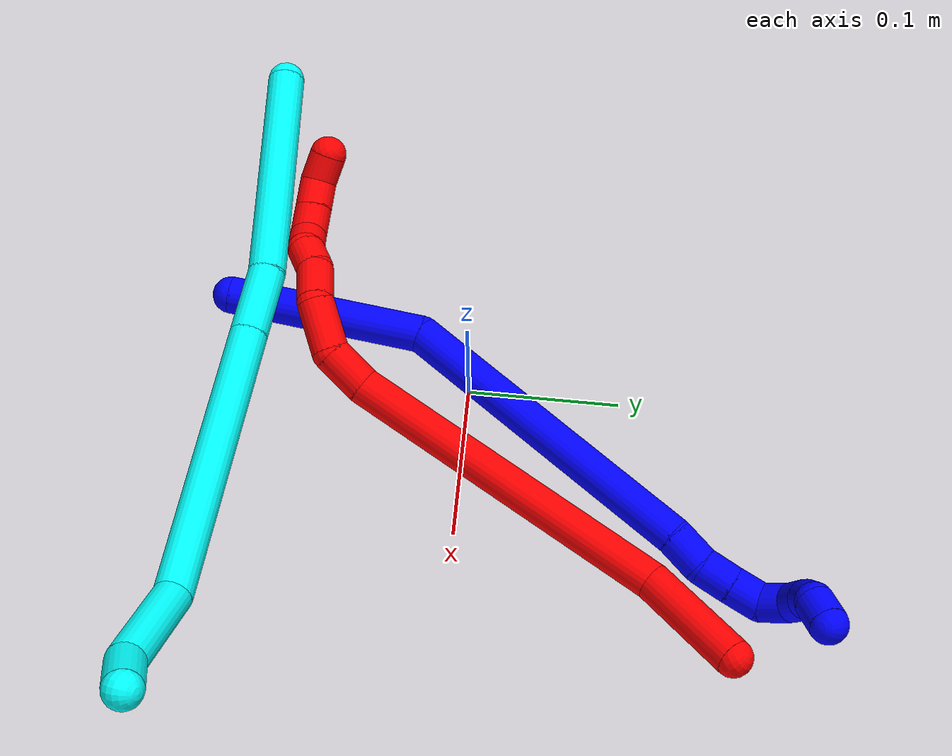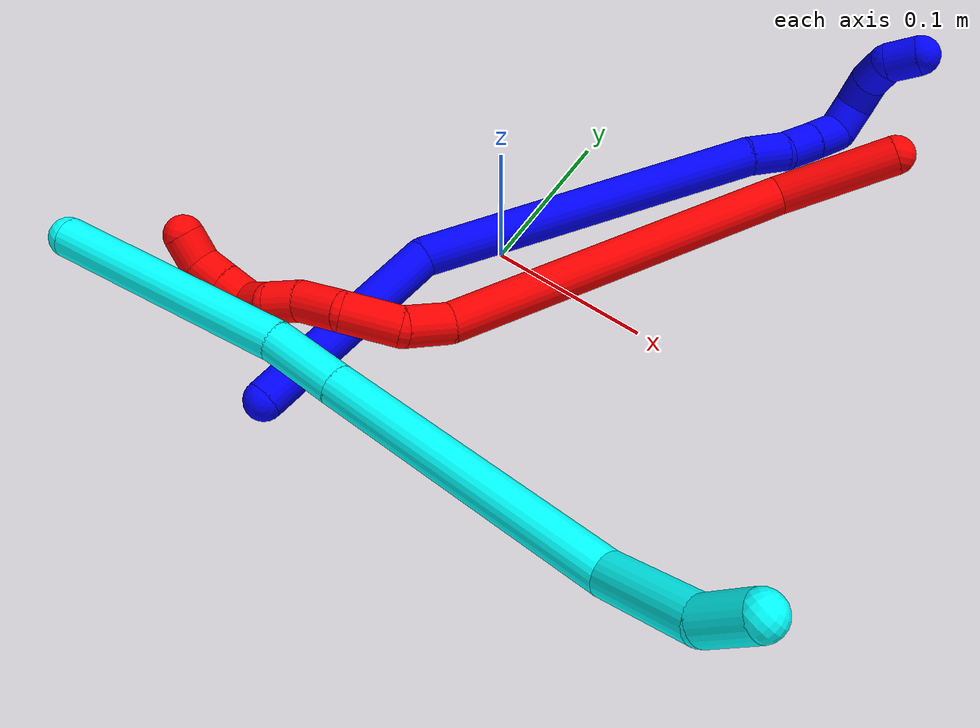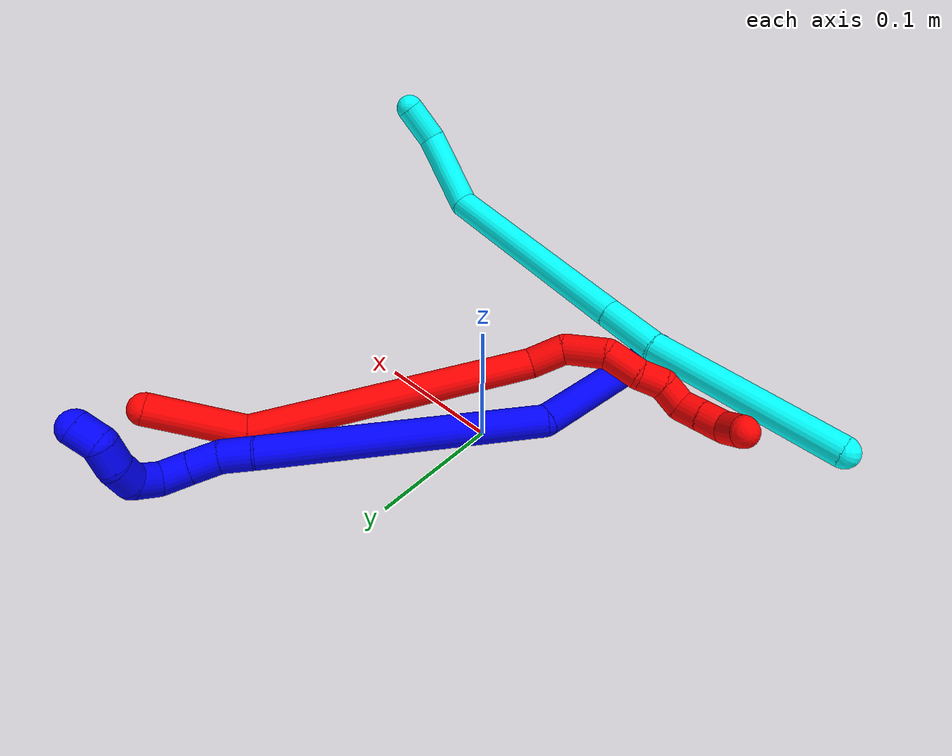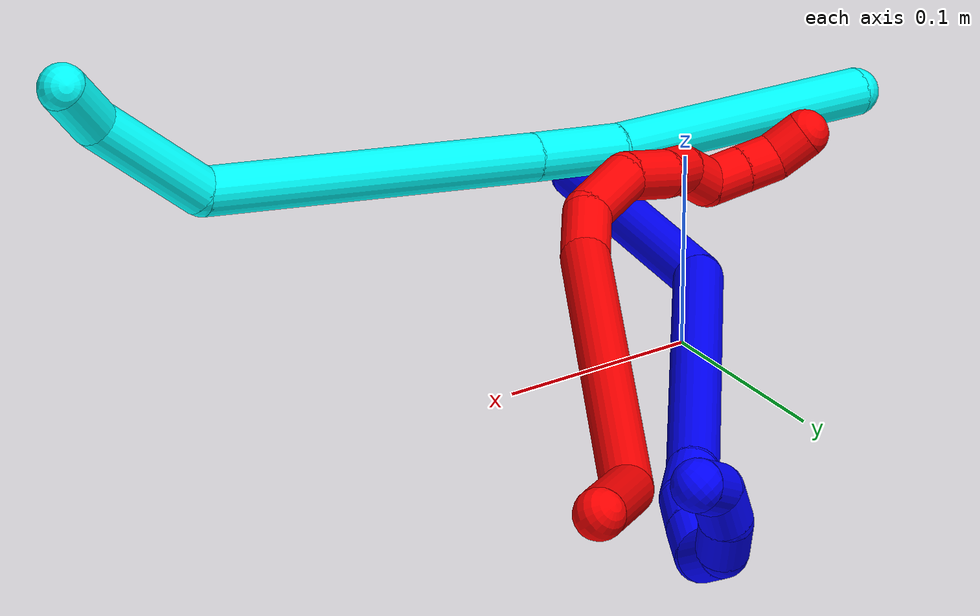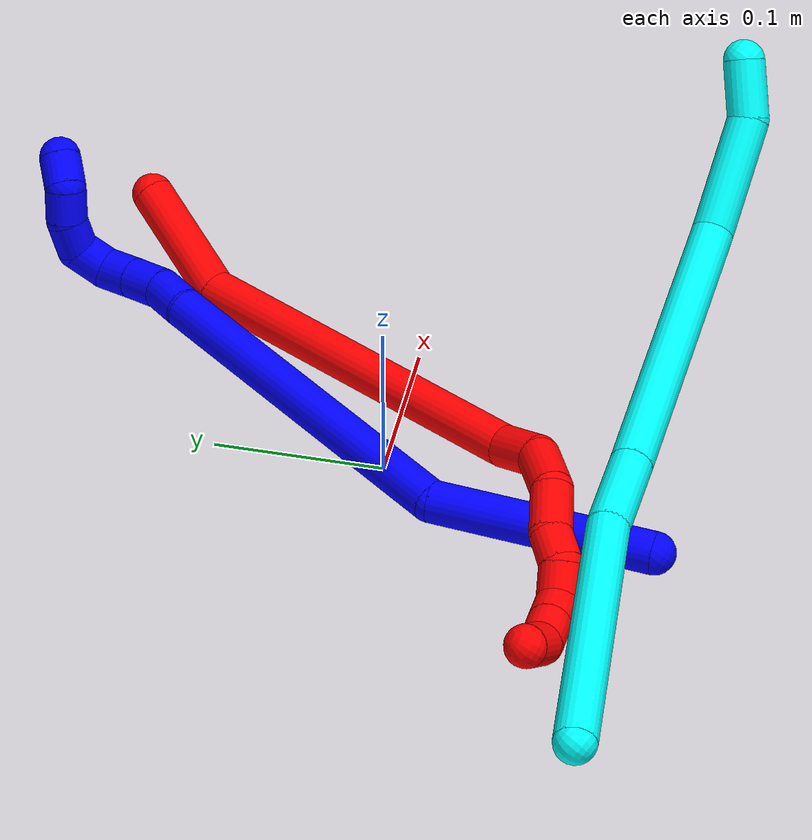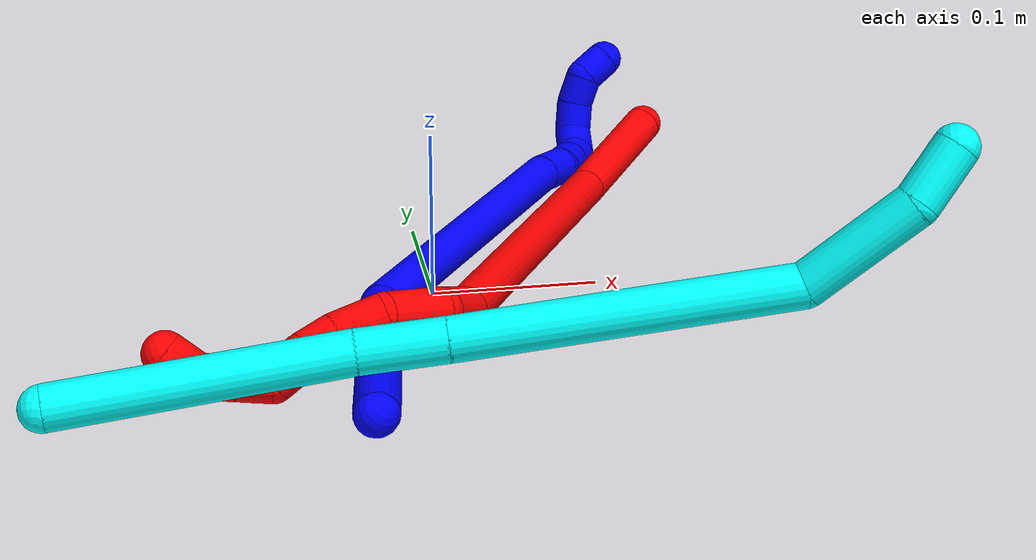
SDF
<sdf version="1.7">
 <world name="default">
  <plugin name="TubeGeneratorPlugin" filename="libtube_generator_plugin.so"/>
  <model name="photoneo_s_sensor">
   <static>1</static>
   <pose>0 0 2 1.57079 1.57079 3.14159</pose>
   <link name="link">
    <inertial><mass>0.1</mass></inertial>
    <sensor name="sensor" type="depth">
     <update_rate>30</update_rate>
     <camera>
      <horizontal_fov>1.22</horizontal_fov>
      <image><width>1920</width><height>1200</height><format>B8G8R8</format></image>
      <clip><near>0.1</near><far>4</far></clip>
      <depth_camera><output>points</output></depth_camera>
     </camera>
     <plugin name="camera_plugin" filename="libgazebo_ros_depth_camera.so">
      <baseline>0.2</baseline>
      <alwaysOn>1</alwaysOn>
      <updateRate>0.0</updateRate>
      <cameraName>camera_ir</cameraName>
      <imageTopicName>/camera/color/image_raw</imageTopicName>
      <cameraInfoTopicName>/camera/color/camera_info</cameraInfoTopicName>
      <depthImageTopicName>/camera/depth/image_raw</depthImageTopicName>
      <depthImageCameraInfoTopicName>/camera/depth/camera_info</depthImageCameraInfoTopicName>
      <pointCloudTopicName>/camera/depth/points</pointCloudTopicName>
      <frameName>fr_optical</frameName>
      <pointCloudCutoff>0.1</pointCloudCutoff>
      <pointCloudCutoffMax>2.0</pointCloudCutoffMax>
      <distortionK1>0</distortionK1>
      <distortionK2>0</distortionK2>
      <distortionK3>0</distortionK3>
      <distortionT1>0</distortionT1>
      <distortionT2>0</distortionT2>
      <CxPrime>0</CxPrime>
      <Cx>0</Cx>
      <Cy>0</Cy>
      <focalLength>0</focalLength>
      <hackBaseline>0</hackBaseline>
     </plugin>
    </sensor>
   </link>
  </model>
  <gravity>0 0 -9.8</gravity>
  <magnetic_field>6e-06 2.3e-05 -4.2e-05</magnetic_field>
  <atmosphere type="adiabatic"/>
  <physics name="default_physics" default="0" type="ode">
   <max_step_size>0.003</max_step_size>
   <real_time_factor>1</real_time_factor>
   <real_time_update_rate>1000</real_time_update_rate>
   <max_contacts>10000</max_contacts>
   <ode>
    <solver>
     <type>quick</type>
     <iters>100</iters>
     <sor>1.3</sor>
     <use_dynamic_moi_rescaling>0</use_dynamic_moi_rescaling>
    </solver>
    <constraints>
     <contact_max_correcting_vel>0</contact_max_correcting_vel>
     <contact_surface_layer>0.001</contact_surface_layer>
     <cfm>0</cfm>
     <erp>0.2</erp>
    </constraints>
   </ode>
  </physics>
  <scene><ambient>0.4 0.4 0.4 1</ambient><background>0.7 0.7 0.7 1</background><shadows>0</shadows></scene>
  <audio><device>default</device></audio>
  <spherical_coordinates>
   <surface_model>EARTH_WGS84</surface_model>
   <latitude_deg>0</latitude_deg>
   <longitude_deg>0</longitude_deg>
   <elevation>0</elevation>
   <heading_deg>0</heading_deg>
  </spherical_coordinates>
  <model name="bin">
   <static>1</static>
   <link name="bottom">
    <collision name="collision-bottom">
     <pose>0 0 -0.01 0 -0 0</pose>
     <geometry><box><size>0.8 0.6 0.02</size></box></geometry>
     <surface>
      <friction><ode><mu>100</mu><mu2>100</mu2></ode></friction>
      <contact><collide_bitmask>65535</collide_bitmask></contact>
     </surface>
    </collision>
   </link>
   <link name="west_wall">
    <collision name="collision-west_wall">
     <pose>-0.41 0 0.1 0 -0 0</pose>
     <geometry><box><size>0.02 0.6 0.2</size></box></geometry>
     <surface>
      <friction><ode><mu>100</mu><mu2>100</mu2></ode></friction>
      <contact><collide_bitmask>65535</collide_bitmask></contact>
     </surface>
    </collision>
   </link>
   <link name="east_wall">
    <collision name="collision-east_wall">
     <pose>0.41 0 0.1 0 -0 0</pose>
     <geometry><box><size>0.02 0.6 0.2</size></box></geometry>
     <surface>
      <friction><ode><mu>100</mu><mu2>100</mu2></ode></friction>
      <contact><collide_bitmask>65535</collide_bitmask></contact>
     </surface>
    </collision>
   </link>
   <link name="south_wall">
    <collision name="collision-south_wall">
     <pose>0 -0.31 0.1 0 -0 0</pose>
     <geometry><box><size>0.8 0.02 0.2</size></box></geometry>
     <surface>
      <friction><ode><mu>100</mu><mu2>100</mu2></ode></friction>
      <contact><collide_bitmask>65535</collide_bitmask></contact>
     </surface>
    </collision>
   </link>
   <link name="north_wall">
    <collision name="collision-north_wall">
     <pose>0 0.31 0.1 0 -0 0</pose>
     <geometry><box><size>0.8 0.02 0.2</size></box></geometry>
     <surface>
      <friction><ode><mu>100</mu><mu2>100</mu2></ode></friction>
      <contact><collide_bitmask>65535</collide_bitmask></contact>
     </surface>
    </collision>
   </link>
  </model>
  <model name="1">
   <static>0</static>
   <link name="1">
    <collision name="collision-cylinder-e_1_1_4">
     <pose>0.012954 0.056591 -0.032014 -2.08562 0.196658 -0.335116</pose>
     <geometry><cylinder><radius>0.0125</radius><length>0.132593</length></cylinder></geometry>
     <surface>
      <friction><ode><mu>1.16</mu><mu2>1.16</mu2><slip1>0</slip1><slip2>0</slip2></ode></friction>
      <contact><ode><kp>1e+06</kp><kd>1</kd><max_vel>0</max_vel><min_depth>0.001</min_depth></ode></contact>
     </surface>
    </collision>
    <visual name="visual-cylinder-e_1_1_4">
     <pose>0.012954 0.056591 -0.032014 -2.08562 0.196658 -0.335116</pose>
     <geometry><cylinder><radius>0.0125</radius><length>0.132593</length></cylinder></geometry>
     <material><ambient>0 0 1 1</ambient></material>
    </visual>
    <collision name="collision-cylinder-e_2_4_5">
     <pose>0.087643 0.201071 -0.08064 -1.7576 0.604116 -0.7193</pose>
     <geometry><cylinder><radius>0.0125</radius><length>0.217365</length></cylinder></geometry>
     <surface>
      <friction><ode><mu>1.16</mu><mu2>1.16</mu2><slip1>0</slip1><slip2>0</slip2></ode></friction>
      <contact><ode><kp>1e+06</kp><kd>1</kd><max_vel>0</max_vel><min_depth>0.001</min_depth></ode></contact>
     </surface>
    </collision>
    <visual name="visual-cylinder-e_2_4_5">
     <pose>0.087643 0.201071 -0.08064 -1.7576 0.604116 -0.7193</pose>
     <geometry><cylinder><radius>0.0125</radius><length>0.217365</length></cylinder></geometry>
     <material><ambient>0 0 1 1</ambient></material>
    </visual>
    <collision name="collision-cylinder-e_3_5_6">
     <pose>0.157984 0.297689 -0.099141 -1.784 0.766948 -0.927512</pose>
     <geometry><cylinder><radius>0.0125</radius><length>0.024802</length></cylinder></geometry>
     <surface>
      <friction><ode><mu>1.16</mu><mu2>1.16</mu2><slip1>0</slip1><slip2>0</slip2></ode></friction>
      <contact><ode><kp>1e+06</kp><kd>1</kd><max_vel>0</max_vel><min_depth>0.001</min_depth></ode></contact>
     </surface>
    </collision>
    <visual name="visual-cylinder-e_3_5_6">
     <pose>0.157984 0.297689 -0.099141 -1.784 0.766948 -0.927512</pose>
     <geometry><cylinder><radius>0.0125</radius><length>0.024802</length></cylinder></geometry>
     <material><ambient>0 0 1 1</ambient></material>
    </visual>
    <collision name="collision-cylinder-e_4_6_7">
     <pose>0.17249 0.314759 -0.105297 -2.04354 0.561935 -0.881589</pose>
     <geometry><cylinder><radius>0.0125</radius><length>0.022148</length></cylinder></geometry>
     <surface>
      <friction><ode><mu>1.16</mu><mu2>1.16</mu2><slip1>0</slip1><slip2>0</slip2></ode></friction>
      <contact><ode><kp>1e+06</kp><kd>1</kd><max_vel>0</max_vel><min_depth>0.001</min_depth></ode></contact>
     </surface>
    </collision>
    <visual name="visual-cylinder-e_4_6_7">
     <pose>0.17249 0.314759 -0.105297 -2.04354 0.561935 -0.881589</pose>
     <geometry><cylinder><radius>0.0125</radius><length>0.022148</length></cylinder></geometry>
     <material><ambient>0 0 1 1</ambient></material>
    </visual>
    <collision name="collision-cylinder-e_5_7_8">
     <pose>0.183957 0.331522 -0.113969 -2.05276 0.529889 -0.842601</pose>
     <geometry><cylinder><radius>0.0125</radius><length>0.022024</length></cylinder></geometry>
     <surface>
      <friction><ode><mu>1.16</mu><mu2>1.16</mu2><slip1>0</slip1><slip2>0</slip2></ode></friction>
      <contact><ode><kp>1e+06</kp><kd>1</kd><max_vel>0</max_vel><min_depth>0.001</min_depth></ode></contact>
     </surface>
    </collision>
    <visual name="visual-cylinder-e_5_7_8">
     <pose>0.183957 0.331522 -0.113969 -2.05276 0.529889 -0.842601</pose>
     <geometry><cylinder><radius>0.0125</radius><length>0.022024</length></cylinder></geometry>
     <material><ambient>0 0 1 1</ambient></material>
    </visual>
    <collision name="collision-cylinder-e_6_8_9">
     <pose>0.188265 0.350147 -0.118958 -1.62808 -0.122391 0.129591</pose>
     <geometry><cylinder><radius>0.0125</radius><length>0.020599</length></cylinder></geometry>
     <surface>
      <friction><ode><mu>1.16</mu><mu2>1.16</mu2><slip1>0</slip1><slip2>0</slip2></ode></friction>
      <contact><ode><kp>1e+06</kp><kd>1</kd><max_vel>0</max_vel><min_depth>0.001</min_depth></ode></contact>
     </surface>
    </collision>
    <visual name="visual-cylinder-e_6_8_9">
     <pose>0.188265 0.350147 -0.118958 -1.62808 -0.122391 0.129591</pose>
     <geometry><cylinder><radius>0.0125</radius><length>0.020599</length></cylinder></geometry>
     <material><ambient>0 0 1 1</ambient></material>
    </visual>
    <collision name="collision-cylinder-e_7_9_10">
     <pose>0.183887 0.368231 -0.113898 -0.949012 -0.311574 0.160998</pose>
     <geometry><cylinder><radius>0.0125</radius><length>0.020365</length></cylinder></geometry>
     <surface>
      <friction><ode><mu>1.16</mu><mu2>1.16</mu2><slip1>0</slip1><slip2>0</slip2></ode></friction>
      <contact><ode><kp>1e+06</kp><kd>1</kd><max_vel>0</max_vel><min_depth>0.001</min_depth></ode></contact>
     </surface>
    </collision>
    <visual name="visual-cylinder-e_7_9_10">
     <pose>0.183887 0.368231 -0.113898 -0.949012 -0.311574 0.160998</pose>
     <geometry><cylinder><radius>0.0125</radius><length>0.020365</length></cylinder></geometry>
     <material><ambient>0 0 1 1</ambient></material>
    </visual>
    <collision name="collision-cylinder-e_8_10_11">
     <pose>0.179385 0.382319 -0.100521 -0.67667 -0.138262 0.048717</pose>
     <geometry><cylinder><radius>0.0125</radius><length>0.020023</length></cylinder></geometry>
     <surface>
      <friction><ode><mu>1.16</mu><mu2>1.16</mu2><slip1>0</slip1><slip2>0</slip2></ode></friction>
      <contact><ode><kp>1e+06</kp><kd>1</kd><max_vel>0</max_vel><min_depth>0.001</min_depth></ode></contact>
     </surface>
    </collision>
    <visual name="visual-cylinder-e_8_10_11">
     <pose>0.179385 0.382319 -0.100521 -0.67667 -0.138262 0.048717</pose>
     <geometry><cylinder><radius>0.0125</radius><length>0.020023</length></cylinder></geometry>
     <material><ambient>0 0 1 1</ambient></material>
    </visual>
    <collision name="collision-cylinder-e_9_11_2">
     <pose>0.18283 0.395659 -0.087624 -0.943887 0.501285 -0.259886</pose>
     <geometry><cylinder><radius>0.0125</radius><length>0.020081</length></cylinder></geometry>
     <surface>
      <friction><ode><mu>1.16</mu><mu2>1.16</mu2><slip1>0</slip1><slip2>0</slip2></ode></friction>
      <contact><ode><kp>1e+06</kp><kd>1</kd><max_vel>0</max_vel><min_depth>0.001</min_depth></ode></contact>
     </surface>
    </collision>
    <visual name="visual-cylinder-e_9_11_2">
     <pose>0.18283 0.395659 -0.087624 -0.943887 0.501285 -0.259886</pose>
     <geometry><cylinder><radius>0.0125</radius><length>0.020081</length></cylinder></geometry>
     <material><ambient>0 0 1 1</ambient></material>
    </visual>
    <collision name="collision-sphere-2">
     <pose>0.187655 0.40279 -0.082459 0 -0 0</pose>
     <geometry><sphere><radius>0.0125</radius></sphere></geometry>
     <surface>
      <friction><ode><mu>1.16</mu><mu2>1.16</mu2><slip1>0</slip1><slip2>0</slip2></ode></friction>
      <contact><ode><kp>1e+06</kp><kd>1</kd><max_vel>0</max_vel><min_depth>0.001</min_depth></ode></contact>
     </surface>
    </collision>
    <visual name="visual-sphere-2">
     <pose>0.187655 0.40279 -0.082459 0 -0 0</pose>
     <geometry><sphere><radius>0.0125</radius></sphere></geometry>
     <material><ambient>0 0 1 1</ambient></material>
    </visual>
    <collision name="collision-sphere-11">
     <pose>0.178005 0.388528 -0.09279 0 -0 0</pose>
     <geometry><sphere><radius>0.0125</radius></sphere></geometry>
     <surface>
      <friction><ode><mu>1.16</mu><mu2>1.16</mu2><slip1>0</slip1><slip2>0</slip2></ode></friction>
      <contact><ode><kp>1e+06</kp><kd>1</kd><max_vel>0</max_vel><min_depth>0.001</min_depth></ode></contact>
     </surface>
    </collision>
    <visual name="visual-sphere-11">
     <pose>0.178005 0.388528 -0.09279 0 -0 0</pose>
     <geometry><sphere><radius>0.0125</radius></sphere></geometry>
     <material><ambient>0 0 1 1</ambient></material>
    </visual>
    <collision name="collision-sphere-10">
     <pose>0.180765 0.376109 -0.108252 0 -0 0</pose>
     <geometry><sphere><radius>0.0125</radius></sphere></geometry>
     <surface>
      <friction><ode><mu>1.16</mu><mu2>1.16</mu2><slip1>0</slip1><slip2>0</slip2></ode></friction>
      <contact><ode><kp>1e+06</kp><kd>1</kd><max_vel>0</max_vel><min_depth>0.001</min_depth></ode></contact>
     </surface>
    </collision>
    <visual name="visual-sphere-10">
     <pose>0.180765 0.376109 -0.108252 0 -0 0</pose>
     <geometry><sphere><radius>0.0125</radius></sphere></geometry>
     <material><ambient>0 0 1 1</ambient></material>
    </visual>
    <collision name="collision-sphere-9">
     <pose>0.187008 0.360353 -0.119544 0 -0 0</pose>
     <geometry><sphere><radius>0.0125</radius></sphere></geometry>
     <surface>
      <friction><ode><mu>1.16</mu><mu2>1.16</mu2><slip1>0</slip1><slip2>0</slip2></ode></friction>
      <contact><ode><kp>1e+06</kp><kd>1</kd><max_vel>0</max_vel><min_depth>0.001</min_depth></ode></contact>
     </surface>
    </collision>
    <visual name="visual-sphere-9">
     <pose>0.187008 0.360353 -0.119544 0 -0 0</pose>
     <geometry><sphere><radius>0.0125</radius></sphere></geometry>
     <material><ambient>0 0 1 1</ambient></material>
    </visual>
    <collision name="collision-sphere-4">
     <pose>0.025908 0.113181 -0.064028 0 -0 0</pose>
     <geometry><sphere><radius>0.0125</radius></sphere></geometry>
     <surface>
      <friction><ode><mu>1.16</mu><mu2>1.16</mu2><slip1>0</slip1><slip2>0</slip2></ode></friction>
      <contact><ode><kp>1e+06</kp><kd>1</kd><max_vel>0</max_vel><min_depth>0.001</min_depth></ode></contact>
     </surface>
    </collision>
    <visual name="visual-sphere-4">
     <pose>0.025908 0.113181 -0.064028 0 -0 0</pose>
     <geometry><sphere><radius>0.0125</radius></sphere></geometry>
     <material><ambient>0 0 1 1</ambient></material>
    </visual>
    <collision name="collision-sphere-1">
     <geometry><sphere><radius>0.0125</radius></sphere></geometry>
     <surface>
      <friction><ode><mu>1.16</mu><mu2>1.16</mu2><slip1>0</slip1><slip2>0</slip2></ode></friction>
      <contact><ode><kp>1e+06</kp><kd>1</kd><max_vel>0</max_vel><min_depth>0.001</min_depth></ode></contact>
     </surface>
    </collision>
    <visual name="visual-sphere-1">
     <geometry><sphere><radius>0.0125</radius></sphere></geometry>
     <material><ambient>0 0 1 1</ambient></material>
    </visual>
    <collision name="collision-sphere-8">
     <pose>0.189523 0.339942 -0.118373 0 -0 0</pose>
     <geometry><sphere><radius>0.0125</radius></sphere></geometry>
     <surface>
      <friction><ode><mu>1.16</mu><mu2>1.16</mu2><slip1>0</slip1><slip2>0</slip2></ode></friction>
      <contact><ode><kp>1e+06</kp><kd>1</kd><max_vel>0</max_vel><min_depth>0.001</min_depth></ode></contact>
     </surface>
    </collision>
    <visual name="visual-sphere-8">
     <pose>0.189523 0.339942 -0.118373 0 -0 0</pose>
     <geometry><sphere><radius>0.0125</radius></sphere></geometry>
     <material><ambient>0 0 1 1</ambient></material>
    </visual>
    <collision name="collision-sphere-5">
     <pose>0.149378 0.288961 -0.097252 0 -0 0</pose>
     <geometry><sphere><radius>0.0125</radius></sphere></geometry>
     <surface>
      <friction><ode><mu>1.16</mu><mu2>1.16</mu2><slip1>0</slip1><slip2>0</slip2></ode></friction>
      <contact><ode><kp>1e+06</kp><kd>1</kd><max_vel>0</max_vel><min_depth>0.001</min_depth></ode></contact>
     </surface>
    </collision>
    <visual name="visual-sphere-5">
     <pose>0.149378 0.288961 -0.097252 0 -0 0</pose>
     <geometry><sphere><radius>0.0125</radius></sphere></geometry>
     <material><ambient>0 0 1 1</ambient></material>
    </visual>
    <collision name="collision-sphere-6">
     <pose>0.16659 0.306416 -0.10103 0 -0 0</pose>
     <geometry><sphere><radius>0.0125</radius></sphere></geometry>
     <surface>
      <friction><ode><mu>1.16</mu><mu2>1.16</mu2><slip1>0</slip1><slip2>0</slip2></ode></friction>
      <contact><ode><kp>1e+06</kp><kd>1</kd><max_vel>0</max_vel><min_depth>0.001</min_depth></ode></contact>
     </surface>
    </collision>
    <visual name="visual-sphere-6">
     <pose>0.16659 0.306416 -0.10103 0 -0 0</pose>
     <geometry><sphere><radius>0.0125</radius></sphere></geometry>
     <material><ambient>0 0 1 1</ambient></material>
    </visual>
    <collision name="collision-sphere-7">
     <pose>0.178391 0.323102 -0.109564 0 -0 0</pose>
     <geometry><sphere><radius>0.0125</radius></sphere></geometry>
     <surface>
      <friction><ode><mu>1.16</mu><mu2>1.16</mu2><slip1>0</slip1><slip2>0</slip2></ode></friction>
      <contact><ode><kp>1e+06</kp><kd>1</kd><max_vel>0</max_vel><min_depth>0.001</min_depth></ode></contact>
     </surface>
    </collision>
    <visual name="visual-sphere-7">
     <pose>0.178391 0.323102 -0.109564 0 -0 0</pose>
     <geometry><sphere><radius>0.0125</radius></sphere></geometry>
     <material><ambient>0 0 1 1</ambient></material>
    </visual>
    <inertial>
     <pose>0.094889 0.206355 -0.075233 0 -0 0</pose>
     <mass>0.5</mass>
     <inertia>
      <ixx>0.000207</ixx>
      <ixy>0</ixy>
      <ixz>0</ixz>
      <iyy>-0.000385</iyy>
      <iyz>0</iyz>
      <izz>-0.001418</izz>
     </inertia>
    </inertial>
   </link>
   <pose>-0.050614 -0.166315 0.011495 0.622705 0.494182 0.098687</pose>
  </model>
  <model name="2">
   <static>0</static>
   <link name="2">
    <collision name="collision-cylinder-e_1_1_4">
     <pose>-0.006044 -0.031122 0.020831 0.98095 -0.160007 -0.085574</pose>
     <geometry><cylinder><radius>0.0125</radius><length>0.07587</length></cylinder></geometry>
     <surface>
      <friction><ode><mu>1.16</mu><mu2>1.16</mu2><slip1>0</slip1><slip2>0</slip2></ode></friction>
      <contact><ode><kp>1e+06</kp><kd>1</kd><max_vel>0</max_vel><min_depth>0.001</min_depth></ode></contact>
     </surface>
    </collision>
    <visual name="visual-cylinder-e_1_1_4">
     <pose>-0.006044 -0.031122 0.020831 0.98095 -0.160007 -0.085574</pose>
     <geometry><cylinder><radius>0.0125</radius><length>0.07587</length></cylinder></geometry>
     <material><ambient>1 0 0 1</ambient></material>
    </visual>
    <collision name="collision-cylinder-e_2_4_5">
     <pose>-0.078202 -0.136093 0.097298 0.925144 -0.620756 -0.317196</pose>
     <geometry><cylinder><radius>0.0125</radius><length>0.227333</length></cylinder></geometry>
     <surface>
      <friction><ode><mu>1.16</mu><mu2>1.16</mu2><slip1>0</slip1><slip2>0</slip2></ode></friction>
      <contact><ode><kp>1e+06</kp><kd>1</kd><max_vel>0</max_vel><min_depth>0.001</min_depth></ode></contact>
     </surface>
    </collision>
    <visual name="visual-cylinder-e_2_4_5">
     <pose>-0.078202 -0.136093 0.097298 0.925144 -0.620756 -0.317196</pose>
     <geometry><cylinder><radius>0.0125</radius><length>0.227333</length></cylinder></geometry>
     <material><ambient>1 0 0 1</ambient></material>
    </visual>
    <collision name="collision-cylinder-e_3_5_6">
     <pose>-0.155587 -0.219775 0.155563 1.30942 -0.836306 -0.657483</pose>
     <geometry><cylinder><radius>0.0125</radius><length>0.030373</length></cylinder></geometry>
     <surface>
      <friction><ode><mu>1.16</mu><mu2>1.16</mu2><slip1>0</slip1><slip2>0</slip2></ode></friction>
      <contact><ode><kp>1e+06</kp><kd>1</kd><max_vel>0</max_vel><min_depth>0.001</min_depth></ode></contact>
     </surface>
    </collision>
    <visual name="visual-cylinder-e_3_5_6">
     <pose>-0.155587 -0.219775 0.155563 1.30942 -0.836306 -0.657483</pose>
     <geometry><cylinder><radius>0.0125</radius><length>0.030373</length></cylinder></geometry>
     <material><ambient>1 0 0 1</ambient></material>
    </visual>
    <collision name="collision-cylinder-e_4_6_7">
     <pose>-0.172687 -0.246557 0.157689 1.60055 -0.331091 -0.340903</pose>
     <geometry><cylinder><radius>0.0125</radius><length>0.035861</length></cylinder></geometry>
     <surface>
      <friction><ode><mu>1.16</mu><mu2>1.16</mu2><slip1>0</slip1><slip2>0</slip2></ode></friction>
      <contact><ode><kp>1e+06</kp><kd>1</kd><max_vel>0</max_vel><min_depth>0.001</min_depth></ode></contact>
     </surface>
    </collision>
    <visual name="visual-cylinder-e_4_6_7">
     <pose>-0.172687 -0.246557 0.157689 1.60055 -0.331091 -0.340903</pose>
     <geometry><cylinder><radius>0.0125</radius><length>0.035861</length></cylinder></geometry>
     <material><ambient>1 0 0 1</ambient></material>
    </visual>
    <collision name="collision-cylinder-e_5_7_8">
     <pose>-0.1764 -0.277784 0.158366 1.48825 0.146588 0.134998</pose>
     <geometry><cylinder><radius>0.0125</radius><length>0.028966</length></cylinder></geometry>
     <surface>
      <friction><ode><mu>1.16</mu><mu2>1.16</mu2><slip1>0</slip1><slip2>0</slip2></ode></friction>
      <contact><ode><kp>1e+06</kp><kd>1</kd><max_vel>0</max_vel><min_depth>0.001</min_depth></ode></contact>
     </surface>
    </collision>
    <visual name="visual-cylinder-e_5_7_8">
     <pose>-0.1764 -0.277784 0.158366 1.48825 0.146588 0.134998</pose>
     <geometry><cylinder><radius>0.0125</radius><length>0.028966</length></cylinder></geometry>
     <material><ambient>1 0 0 1</ambient></material>
    </visual>
    <collision name="collision-cylinder-e_6_8_9">
     <pose>-0.174783 -0.30165 0.162716 1.25149 -0.049273 -0.035609</pose>
     <geometry><cylinder><radius>0.0125</radius><length>0.020219</length></cylinder></geometry>
     <surface>
      <friction><ode><mu>1.16</mu><mu2>1.16</mu2><slip1>0</slip1><slip2>0</slip2></ode></friction>
      <contact><ode><kp>1e+06</kp><kd>1</kd><max_vel>0</max_vel><min_depth>0.001</min_depth></ode></contact>
     </surface>
    </collision>
    <visual name="visual-cylinder-e_6_8_9">
     <pose>-0.174783 -0.30165 0.162716 1.25149 -0.049273 -0.035609</pose>
     <geometry><cylinder><radius>0.0125</radius><length>0.020219</length></cylinder></geometry>
     <material><ambient>1 0 0 1</ambient></material>
    </visual>
    <collision name="collision-cylinder-e_7_9_10">
     <pose>-0.170694 -0.32023 0.168874 1.25005 0.450758 0.327883</pose>
     <geometry><cylinder><radius>0.0125</radius><length>0.021057</length></cylinder></geometry>
     <surface>
      <friction><ode><mu>1.16</mu><mu2>1.16</mu2><slip1>0</slip1><slip2>0</slip2></ode></friction>
      <contact><ode><kp>1e+06</kp><kd>1</kd><max_vel>0</max_vel><min_depth>0.001</min_depth></ode></contact>
     </surface>
    </collision>
    <visual name="visual-cylinder-e_7_9_10">
     <pose>-0.170694 -0.32023 0.168874 1.25005 0.450758 0.327883</pose>
     <geometry><cylinder><radius>0.0125</radius><length>0.021057</length></cylinder></geometry>
     <material><ambient>1 0 0 1</ambient></material>
    </visual>
    <collision name="collision-cylinder-e_8_10_11">
     <pose>-0.166096 -0.338664 0.168469 1.91579 0.001109 0.001576</pose>
     <geometry><cylinder><radius>0.0125</radius><length>0.020063</length></cylinder></geometry>
     <surface>
      <friction><ode><mu>1.16</mu><mu2>1.16</mu2><slip1>0</slip1><slip2>0</slip2></ode></friction>
      <contact><ode><kp>1e+06</kp><kd>1</kd><max_vel>0</max_vel><min_depth>0.001</min_depth></ode></contact>
     </surface>
    </collision>
    <visual name="visual-cylinder-e_8_10_11">
     <pose>-0.166096 -0.338664 0.168469 1.91579 0.001109 0.001576</pose>
     <geometry><cylinder><radius>0.0125</radius><length>0.020063</length></cylinder></geometry>
     <material><ambient>1 0 0 1</ambient></material>
    </visual>
    <collision name="collision-cylinder-e_9_11_12">
     <pose>-0.166072 -0.357542 0.16175 1.90965 0.001273 0.001798</pose>
     <geometry><cylinder><radius>0.0125</radius><length>0.020012</length></cylinder></geometry>
     <surface>
      <friction><ode><mu>1.16</mu><mu2>1.16</mu2><slip1>0</slip1><slip2>0</slip2></ode></friction>
      <contact><ode><kp>1e+06</kp><kd>1</kd><max_vel>0</max_vel><min_depth>0.001</min_depth></ode></contact>
     </surface>
    </collision>
    <visual name="visual-cylinder-e_9_11_12">
     <pose>-0.166072 -0.357542 0.16175 1.90965 0.001273 0.001798</pose>
     <geometry><cylinder><radius>0.0125</radius><length>0.020012</length></cylinder></geometry>
     <material><ambient>1 0 0 1</ambient></material>
    </visual>
    <collision name="collision-cylinder-e_10_12_2">
     <pose>-0.168012 -0.373396 0.150842 2.43918 -0.194109 -0.519445</pose>
     <geometry><cylinder><radius>0.0125</radius><length>0.020247</length></cylinder></geometry>
     <surface>
      <friction><ode><mu>1.16</mu><mu2>1.16</mu2><slip1>0</slip1><slip2>0</slip2></ode></friction>
      <contact><ode><kp>1e+06</kp><kd>1</kd><max_vel>0</max_vel><min_depth>0.001</min_depth></ode></contact>
     </surface>
    </collision>
    <visual name="visual-cylinder-e_10_12_2">
     <pose>-0.168012 -0.373396 0.150842 2.43918 -0.194109 -0.519445</pose>
     <geometry><cylinder><radius>0.0125</radius><length>0.020247</length></cylinder></geometry>
     <material><ambient>1 0 0 1</ambient></material>
    </visual>
    <collision name="collision-sphere-2">
     <pose>-0.169965 -0.379814 0.14326 0 -0 0</pose>
     <geometry><sphere><radius>0.0125</radius></sphere></geometry>
     <surface>
      <friction><ode><mu>1.16</mu><mu2>1.16</mu2><slip1>0</slip1><slip2>0</slip2></ode></friction>
      <contact><ode><kp>1e+06</kp><kd>1</kd><max_vel>0</max_vel><min_depth>0.001</min_depth></ode></contact>
     </surface>
    </collision>
    <visual name="visual-sphere-2">
     <pose>-0.169965 -0.379814 0.14326 0 -0 0</pose>
     <geometry><sphere><radius>0.0125</radius></sphere></geometry>
     <material><ambient>1 0 0 1</ambient></material>
    </visual>
    <collision name="collision-sphere-12">
     <pose>-0.16606 -0.366979 0.158424 0 -0 0</pose>
     <geometry><sphere><radius>0.0125</radius></sphere></geometry>
     <surface>
      <friction><ode><mu>1.16</mu><mu2>1.16</mu2><slip1>0</slip1><slip2>0</slip2></ode></friction>
      <contact><ode><kp>1e+06</kp><kd>1</kd><max_vel>0</max_vel><min_depth>0.001</min_depth></ode></contact>
     </surface>
    </collision>
    <visual name="visual-sphere-12">
     <pose>-0.16606 -0.366979 0.158424 0 -0 0</pose>
     <geometry><sphere><radius>0.0125</radius></sphere></geometry>
     <material><ambient>1 0 0 1</ambient></material>
    </visual>
    <collision name="collision-sphere-11">
     <pose>-0.166085 -0.348105 0.165076 0 -0 0</pose>
     <geometry><sphere><radius>0.0125</radius></sphere></geometry>
     <surface>
      <friction><ode><mu>1.16</mu><mu2>1.16</mu2><slip1>0</slip1><slip2>0</slip2></ode></friction>
      <contact><ode><kp>1e+06</kp><kd>1</kd><max_vel>0</max_vel><min_depth>0.001</min_depth></ode></contact>
     </surface>
    </collision>
    <visual name="visual-sphere-11">
     <pose>-0.166085 -0.348105 0.165076 0 -0 0</pose>
     <geometry><sphere><radius>0.0125</radius></sphere></geometry>
     <material><ambient>1 0 0 1</ambient></material>
    </visual>
    <collision name="collision-sphere-10">
     <pose>-0.166107 -0.329224 0.171862 0 -0 0</pose>
     <geometry><sphere><radius>0.0125</radius></sphere></geometry>
     <surface>
      <friction><ode><mu>1.16</mu><mu2>1.16</mu2><slip1>0</slip1><slip2>0</slip2></ode></friction>
      <contact><ode><kp>1e+06</kp><kd>1</kd><max_vel>0</max_vel><min_depth>0.001</min_depth></ode></contact>
     </surface>
    </collision>
    <visual name="visual-sphere-10">
     <pose>-0.166107 -0.329224 0.171862 0 -0 0</pose>
     <geometry><sphere><radius>0.0125</radius></sphere></geometry>
     <material><ambient>1 0 0 1</ambient></material>
    </visual>
    <collision name="collision-sphere-9">
     <pose>-0.175281 -0.311237 0.165886 0 -0 0</pose>
     <geometry><sphere><radius>0.0125</radius></sphere></geometry>
     <surface>
      <friction><ode><mu>1.16</mu><mu2>1.16</mu2><slip1>0</slip1><slip2>0</slip2></ode></friction>
      <contact><ode><kp>1e+06</kp><kd>1</kd><max_vel>0</max_vel><min_depth>0.001</min_depth></ode></contact>
     </surface>
    </collision>
    <visual name="visual-sphere-9">
     <pose>-0.175281 -0.311237 0.165886 0 -0 0</pose>
     <geometry><sphere><radius>0.0125</radius></sphere></geometry>
     <material><ambient>1 0 0 1</ambient></material>
    </visual>
    <collision name="collision-sphere-4">
     <pose>-0.012088 -0.062244 0.041662 0 -0 0</pose>
     <geometry><sphere><radius>0.0125</radius></sphere></geometry>
     <surface>
      <friction><ode><mu>1.16</mu><mu2>1.16</mu2><slip1>0</slip1><slip2>0</slip2></ode></friction>
      <contact><ode><kp>1e+06</kp><kd>1</kd><max_vel>0</max_vel><min_depth>0.001</min_depth></ode></contact>
     </surface>
    </collision>
    <visual name="visual-sphere-4">
     <pose>-0.012088 -0.062244 0.041662 0 -0 0</pose>
     <geometry><sphere><radius>0.0125</radius></sphere></geometry>
     <material><ambient>1 0 0 1</ambient></material>
    </visual>
    <collision name="collision-sphere-1">
     <geometry><sphere><radius>0.0125</radius></sphere></geometry>
     <surface>
      <friction><ode><mu>1.16</mu><mu2>1.16</mu2><slip1>0</slip1><slip2>0</slip2></ode></friction>
      <contact><ode><kp>1e+06</kp><kd>1</kd><max_vel>0</max_vel><min_depth>0.001</min_depth></ode></contact>
     </surface>
    </collision>
    <visual name="visual-sphere-1">
     <geometry><sphere><radius>0.0125</radius></sphere></geometry>
     <material><ambient>1 0 0 1</ambient></material>
    </visual>
    <collision name="collision-sphere-8">
     <pose>-0.174285 -0.292063 0.159547 0 -0 0</pose>
     <geometry><sphere><radius>0.0125</radius></sphere></geometry>
     <surface>
      <friction><ode><mu>1.16</mu><mu2>1.16</mu2><slip1>0</slip1><slip2>0</slip2></ode></friction>
      <contact><ode><kp>1e+06</kp><kd>1</kd><max_vel>0</max_vel><min_depth>0.001</min_depth></ode></contact>
     </surface>
    </collision>
    <visual name="visual-sphere-8">
     <pose>-0.174285 -0.292063 0.159547 0 -0 0</pose>
     <geometry><sphere><radius>0.0125</radius></sphere></geometry>
     <material><ambient>1 0 0 1</ambient></material>
    </visual>
    <collision name="collision-sphere-5">
     <pose>-0.144316 -0.209943 0.152933 0 -0 0</pose>
     <geometry><sphere><radius>0.0125</radius></sphere></geometry>
     <surface>
      <friction><ode><mu>1.16</mu><mu2>1.16</mu2><slip1>0</slip1><slip2>0</slip2></ode></friction>
      <contact><ode><kp>1e+06</kp><kd>1</kd><max_vel>0</max_vel><min_depth>0.001</min_depth></ode></contact>
     </surface>
    </collision>
    <visual name="visual-sphere-5">
     <pose>-0.144316 -0.209943 0.152933 0 -0 0</pose>
     <geometry><sphere><radius>0.0125</radius></sphere></geometry>
     <material><ambient>1 0 0 1</ambient></material>
    </visual>
    <collision name="collision-sphere-6">
     <pose>-0.166858 -0.229607 0.158193 0 -0 0</pose>
     <geometry><sphere><radius>0.0125</radius></sphere></geometry>
     <surface>
      <friction><ode><mu>1.16</mu><mu2>1.16</mu2><slip1>0</slip1><slip2>0</slip2></ode></friction>
      <contact><ode><kp>1e+06</kp><kd>1</kd><max_vel>0</max_vel><min_depth>0.001</min_depth></ode></contact>
     </surface>
    </collision>
    <visual name="visual-sphere-6">
     <pose>-0.166858 -0.229607 0.158193 0 -0 0</pose>
     <geometry><sphere><radius>0.0125</radius></sphere></geometry>
     <material><ambient>1 0 0 1</ambient></material>
    </visual>
    <collision name="collision-sphere-7">
     <pose>-0.178516 -0.263506 0.157184 0 -0 0</pose>
     <geometry><sphere><radius>0.0125</radius></sphere></geometry>
     <surface>
      <friction><ode><mu>1.16</mu><mu2>1.16</mu2><slip1>0</slip1><slip2>0</slip2></ode></friction>
      <contact><ode><kp>1e+06</kp><kd>1</kd><max_vel>0</max_vel><min_depth>0.001</min_depth></ode></contact>
     </surface>
    </collision>
    <visual name="visual-sphere-7">
     <pose>-0.178516 -0.263506 0.157184 0 -0 0</pose>
     <geometry><sphere><radius>0.0125</radius></sphere></geometry>
     <material><ambient>1 0 0 1</ambient></material>
    </visual>
    <inertial>
     <pose>-0.1029 -0.18243 0.110367 0 -0 0</pose>
     <mass>0.5</mass>
     <inertia>
      <ixx>0.000549</ixx>
      <ixy>0</ixy>
      <ixz>0</ixz>
      <iyy>0.000446</iyy>
      <iyz>0</iyz>
      <izz>0.001287</izz>
     </inertia>
    </inertial>
   </link>
   <pose>0.173193 0.179563 0.037662 2.97965 0.836174 1.65296</pose>
  </model>
  <model name="3">
   <static>0</static>
   <link name="3">
    <collision name="collision-cylinder-e_1_1_4">
     <pose>0.073283 -0.010289 -0.028084 2.7904 1.18329 2.62529</pose>
     <geometry><cylinder><radius>0.0125</radius><length>0.158302</length></cylinder></geometry>
     <surface>
      <friction><ode><mu>1.16</mu><mu2>1.16</mu2><slip1>0</slip1><slip2>0</slip2></ode></friction>
      <contact><ode><kp>1e+06</kp><kd>1</kd><max_vel>0</max_vel><min_depth>0.001</min_depth></ode></contact>
     </surface>
    </collision>
    <visual name="visual-cylinder-e_1_1_4">
     <pose>0.073283 -0.010289 -0.028084 2.7904 1.18329 2.62529</pose>
     <geometry><cylinder><radius>0.0125</radius><length>0.158302</length></cylinder></geometry>
     <material><ambient>0.003922 1 0.996078 1</ambient></material>
    </visual>
    <collision name="collision-cylinder-e_2_4_5">
     <pose>0.170224 -0.021378 -0.061865 3.00213 1.33225 2.96433</pose>
     <geometry><cylinder><radius>0.0125</radius><length>0.048696</length></cylinder></geometry>
     <surface>
      <friction><ode><mu>1.16</mu><mu2>1.16</mu2><slip1>0</slip1><slip2>0</slip2></ode></friction>
      <contact><ode><kp>1e+06</kp><kd>1</kd><max_vel>0</max_vel><min_depth>0.001</min_depth></ode></contact>
     </surface>
    </collision>
    <visual name="visual-cylinder-e_2_4_5">
     <pose>0.170224 -0.021378 -0.061865 3.00213 1.33225 2.96433</pose>
     <geometry><cylinder><radius>0.0125</radius><length>0.048696</length></cylinder></geometry>
     <material><ambient>0.003922 1 0.996078 1</ambient></material>
    </visual>
    <collision name="collision-cylinder-e_3_5_6">
     <pose>0.284359 -0.02444 -0.09077 3.04442 1.31857 3.01627</pose>
     <geometry><cylinder><radius>0.0125</radius><length>0.186866</length></cylinder></geometry>
     <surface>
      <friction><ode><mu>1.16</mu><mu2>1.16</mu2><slip1>0</slip1><slip2>0</slip2></ode></friction>
      <contact><ode><kp>1e+06</kp><kd>1</kd><max_vel>0</max_vel><min_depth>0.001</min_depth></ode></contact>
     </surface>
    </collision>
    <visual name="visual-cylinder-e_3_5_6">
     <pose>0.284359 -0.02444 -0.09077 3.04442 1.31857 3.01627</pose>
     <geometry><cylinder><radius>0.0125</radius><length>0.186866</length></cylinder></geometry>
     <material><ambient>0.003922 1 0.996078 1</ambient></material>
    </visual>
    <collision name="collision-cylinder-e_4_6_7">
     <pose>0.402285 -0.008509 -0.127152 -2.19751 0.884974 -1.49623</pose>
     <geometry><cylinder><radius>0.0125</radius><length>0.070938</length></cylinder></geometry>
     <surface>
      <friction><ode><mu>1.16</mu><mu2>1.16</mu2><slip1>0</slip1><slip2>0</slip2></ode></friction>
      <contact><ode><kp>1e+06</kp><kd>1</kd><max_vel>0</max_vel><min_depth>0.001</min_depth></ode></contact>
     </surface>
    </collision>
    <visual name="visual-cylinder-e_4_6_7">
     <pose>0.402285 -0.008509 -0.127152 -2.19751 0.884974 -1.49623</pose>
     <geometry><cylinder><radius>0.0125</radius><length>0.070938</length></cylinder></geometry>
     <material><ambient>0.003922 1 0.996078 1</ambient></material>
    </visual>
    <collision name="collision-cylinder-e_5_7_2">
     <pose>0.43926 0.018093 -0.152504 -2.53736 0.571911 -1.51255</pose>
     <geometry><cylinder><radius>0.0125</radius><length>0.035197</length></cylinder></geometry>
     <surface>
      <friction><ode><mu>1.16</mu><mu2>1.16</mu2><slip1>0</slip1><slip2>0</slip2></ode></friction>
      <contact><ode><kp>1e+06</kp><kd>1</kd><max_vel>0</max_vel><min_depth>0.001</min_depth></ode></contact>
     </surface>
    </collision>
    <visual name="visual-cylinder-e_5_7_2">
     <pose>0.43926 0.018093 -0.152504 -2.53736 0.571911 -1.51255</pose>
     <geometry><cylinder><radius>0.0125</radius><length>0.035197</length></cylinder></geometry>
     <material><ambient>0.003922 1 0.996078 1</ambient></material>
    </visual>
    <collision name="collision-sphere-2">
     <pose>0.448785 0.0265 -0.164682 0 -0 0</pose>
     <geometry><sphere><radius>0.0125</radius></sphere></geometry>
     <surface>
      <friction><ode><mu>1.16</mu><mu2>1.16</mu2><slip1>0</slip1><slip2>0</slip2></ode></friction>
      <contact><ode><kp>1e+06</kp><kd>1</kd><max_vel>0</max_vel><min_depth>0.001</min_depth></ode></contact>
     </surface>
    </collision>
    <visual name="visual-sphere-2">
     <pose>0.448785 0.0265 -0.164682 0 -0 0</pose>
     <geometry><sphere><radius>0.0125</radius></sphere></geometry>
     <material><ambient>0.003922 1 0.996078 1</ambient></material>
    </visual>
    <collision name="collision-sphere-7">
     <pose>0.429735 0.009685 -0.140326 0 -0 0</pose>
     <geometry><sphere><radius>0.0125</radius></sphere></geometry>
     <surface>
      <friction><ode><mu>1.16</mu><mu2>1.16</mu2><slip1>0</slip1><slip2>0</slip2></ode></friction>
      <contact><ode><kp>1e+06</kp><kd>1</kd><max_vel>0</max_vel><min_depth>0.001</min_depth></ode></contact>
     </surface>
    </collision>
    <visual name="visual-sphere-7">
     <pose>0.429735 0.009685 -0.140326 0 -0 0</pose>
     <geometry><sphere><radius>0.0125</radius></sphere></geometry>
     <material><ambient>0.003922 1 0.996078 1</ambient></material>
    </visual>
    <collision name="collision-sphere-6">
     <pose>0.374836 -0.026703 -0.113978 0 -0 0</pose>
     <geometry><sphere><radius>0.0125</radius></sphere></geometry>
     <surface>
      <friction><ode><mu>1.16</mu><mu2>1.16</mu2><slip1>0</slip1><slip2>0</slip2></ode></friction>
      <contact><ode><kp>1e+06</kp><kd>1</kd><max_vel>0</max_vel><min_depth>0.001</min_depth></ode></contact>
     </surface>
    </collision>
    <visual name="visual-sphere-6">
     <pose>0.374836 -0.026703 -0.113978 0 -0 0</pose>
     <geometry><sphere><radius>0.0125</radius></sphere></geometry>
     <material><ambient>0.003922 1 0.996078 1</ambient></material>
    </visual>
    <collision name="collision-sphere-5">
     <pose>0.193882 -0.022178 -0.067563 0 -0 0</pose>
     <geometry><sphere><radius>0.0125</radius></sphere></geometry>
     <surface>
      <friction><ode><mu>1.16</mu><mu2>1.16</mu2><slip1>0</slip1><slip2>0</slip2></ode></friction>
      <contact><ode><kp>1e+06</kp><kd>1</kd><max_vel>0</max_vel><min_depth>0.001</min_depth></ode></contact>
     </surface>
    </collision>
    <visual name="visual-sphere-5">
     <pose>0.193882 -0.022178 -0.067563 0 -0 0</pose>
     <geometry><sphere><radius>0.0125</radius></sphere></geometry>
     <material><ambient>0.003922 1 0.996078 1</ambient></material>
    </visual>
    <collision name="collision-sphere-1">
     <geometry><sphere><radius>0.0125</radius></sphere></geometry>
     <surface>
      <friction><ode><mu>1.16</mu><mu2>1.16</mu2><slip1>0</slip1><slip2>0</slip2></ode></friction>
      <contact><ode><kp>1e+06</kp><kd>1</kd><max_vel>0</max_vel><min_depth>0.001</min_depth></ode></contact>
     </surface>
    </collision>
    <visual name="visual-sphere-1">
     <geometry><sphere><radius>0.0125</radius></sphere></geometry>
     <material><ambient>0.003922 1 0.996078 1</ambient></material>
    </visual>
    <collision name="collision-sphere-4">
     <pose>0.146565 -0.020579 -0.056168 0 -0 0</pose>
     <geometry><sphere><radius>0.0125</radius></sphere></geometry>
     <surface>
      <friction><ode><mu>1.16</mu><mu2>1.16</mu2><slip1>0</slip1><slip2>0</slip2></ode></friction>
      <contact><ode><kp>1e+06</kp><kd>1</kd><max_vel>0</max_vel><min_depth>0.001</min_depth></ode></contact>
     </surface>
    </collision>
    <visual name="visual-sphere-4">
     <pose>0.146565 -0.020579 -0.056168 0 -0 0</pose>
     <geometry><sphere><radius>0.0125</radius></sphere></geometry>
     <material><ambient>0.003922 1 0.996078 1</ambient></material>
    </visual>
    <inertial>
     <pose>0.23405 -0.014408 -0.077616 0 -0 0</pose>
     <mass>0.5</mass>
     <inertia>
      <ixx>-0.000157</ixx>
      <ixy>0</ixy>
      <ixz>0</ixz>
      <iyy>0.000968</iyy>
      <iyz>0</iyz>
      <izz>-0.000859</izz>
     </inertia>
    </inertial>
   </link>
   <pose>-0.216007 -0.150984 0.021489 2.06214 -0.031081 -0.319662</pose>
  </model>
 </world>
</sdf>
